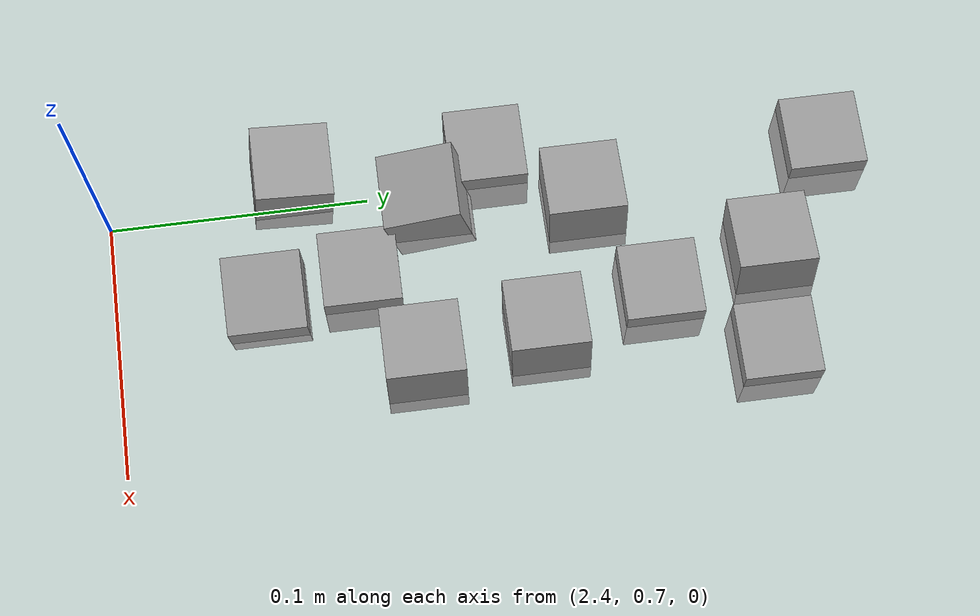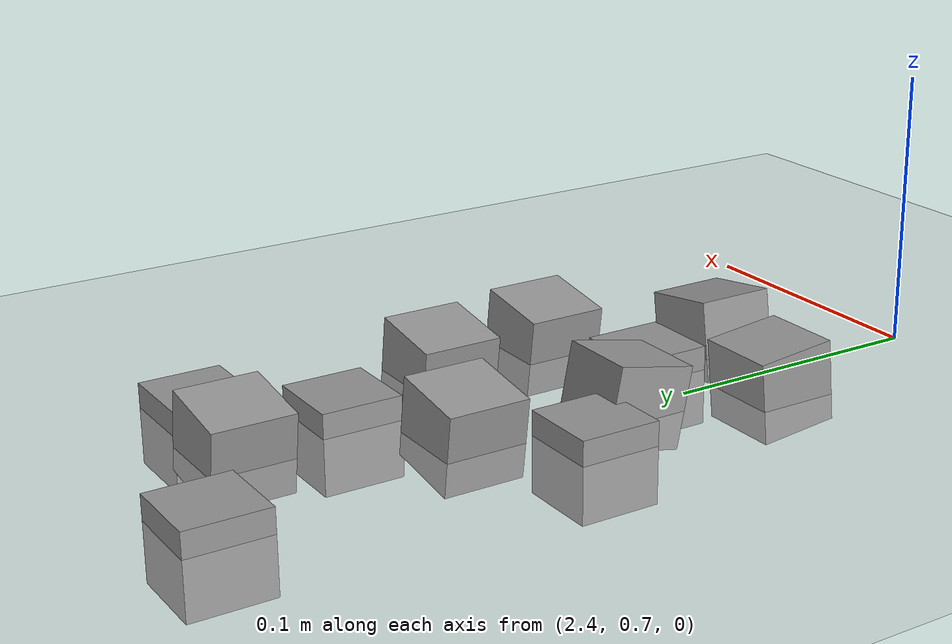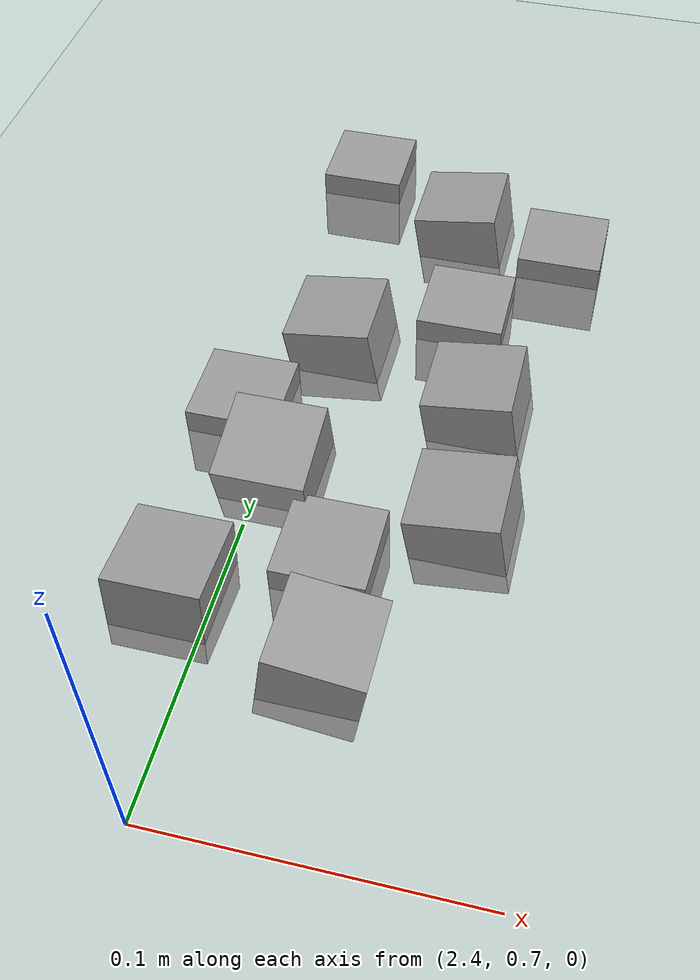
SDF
<sdf version="1.7">
 <world name="default">
  <model name="ground_plane">
   <static>1</static>
   <link name="link">
    <collision name="collision">
     <geometry><plane><normal>0 0 1</normal><size>100 100</size></plane></geometry>
     <surface><friction><ode><mu>100</mu><mu2>50</mu2></ode></friction></surface>
    </collision>
    <visual name="visual">
     <cast_shadows>0</cast_shadows>
     <geometry><plane><normal>0 0 1</normal><size>100 100</size></plane></geometry>
     <material>
      <script><uri>file://media/materials/scripts/gazebo.material</uri><name>Gazebo/Grey</name></script>
     </material>
    </visual>
   </link>
  </model>
  <model name="stone_road_8">
   <link name="link_0_clone_11">
    <inertial>
     <mass>1</mass>
     <inertia>
      <ixx>0.166667</ixx>
      <ixy>0</ixy>
      <ixz>0</ixz>
      <iyy>0.166667</iyy>
      <iyz>0</iyz>
      <izz>0.166667</izz>
     </inertia>
    </inertial>
    <pose>0.007758 0.071496 0.003778 0.2 -0 0</pose>
    <kinematic>1</kinematic>
    <visual name="visual">
     <geometry><box><size>0.03 0.03 0.03</size></box></geometry>
     <material>
      <lighting>1</lighting>
      <script><uri>file://media/materials/scripts/gazebo.material</uri><name>Gazebo/Grey</name></script>
      <shader type="pixel"><normal_map>__default__</normal_map></shader>
      <ambient>0.3 0.3 0.3 1</ambient>
      <diffuse>0.7 0.7 0.7 1</diffuse>
      <specular>0.01 0.01 0.01 1</specular>
      <emissive>0 0 0 1</emissive>
     </material>
    </visual>
    <collision name="collision">
     <geometry><box><size>0.03 0.03 0.03</size></box></geometry>
     <surface>
      <friction>
       <ode><mu>1</mu><mu2>1</mu2><fdir1>0 0 0</fdir1><slip1>0</slip1><slip2>0</slip2></ode>
       <torsional>
        <coefficient>1</coefficient>
        <patch_radius>0</patch_radius>
        <surface_radius>0</surface_radius>
        <use_patch_radius>1</use_patch_radius>
        <ode><slip>0</slip></ode>
       </torsional>
      </friction>
      <bounce><restitution_coefficient>0</restitution_coefficient><threshold>1e+06</threshold></bounce>
      <contact>
       <collide_without_contact>0</collide_without_contact>
       <collide_without_contact_bitmask>1</collide_without_contact_bitmask>
       <collide_bitmask>1</collide_bitmask>
       <ode>
        <soft_cfm>0</soft_cfm>
        <soft_erp>0.2</soft_erp>
        <kp>1e+13</kp>
        <kd>1</kd>
        <max_vel>0.01</max_vel>
        <min_depth>0</min_depth>
       </ode>
       <bullet>
        <split_impulse>1</split_impulse>
        <split_impulse_penetration_threshold>-0.01</split_impulse_penetration_threshold>
        <soft_cfm>0</soft_cfm>
        <soft_erp>0.2</soft_erp>
        <kp>1e+13</kp>
        <kd>1</kd>
       </bullet>
      </contact>
     </surface>
    </collision>
   </link>
   <link name="link_0_clone_2_clone_1">
    <inertial>
     <mass>1</mass>
     <inertia>
      <ixx>0.166667</ixx>
      <ixy>0</ixy>
      <ixz>0</ixz>
      <iyy>0.166667</iyy>
      <iyz>0</iyz>
      <izz>0.166667</izz>
     </inertia>
    </inertial>
    <pose>0.041447 0.006316 0.003778 0 0.15 0</pose>
    <kinematic>1</kinematic>
    <visual name="visual">
     <geometry><box><size>0.03 0.03 0.03</size></box></geometry>
     <material>
      <lighting>1</lighting>
      <script><uri>file://media/materials/scripts/gazebo.material</uri><name>Gazebo/Grey</name></script>
      <shader type="pixel"><normal_map>__default__</normal_map></shader>
      <ambient>0.3 0.3 0.3 1</ambient>
      <diffuse>0.7 0.7 0.7 1</diffuse>
      <specular>0.01 0.01 0.01 1</specular>
      <emissive>0 0 0 1</emissive>
     </material>
    </visual>
    <collision name="collision">
     <geometry><box><size>0.03 0.03 0.03</size></box></geometry>
     <surface>
      <friction>
       <ode><mu>1</mu><mu2>1</mu2><fdir1>0 0 0</fdir1><slip1>0</slip1><slip2>0</slip2></ode>
       <torsional>
        <coefficient>1</coefficient>
        <patch_radius>0</patch_radius>
        <surface_radius>0</surface_radius>
        <use_patch_radius>1</use_patch_radius>
        <ode><slip>0</slip></ode>
       </torsional>
      </friction>
      <bounce><restitution_coefficient>0</restitution_coefficient><threshold>1e+06</threshold></bounce>
      <contact>
       <collide_without_contact>0</collide_without_contact>
       <collide_without_contact_bitmask>1</collide_without_contact_bitmask>
       <collide_bitmask>1</collide_bitmask>
       <ode>
        <soft_cfm>0</soft_cfm>
        <soft_erp>0.2</soft_erp>
        <kp>1e+13</kp>
        <kd>1</kd>
        <max_vel>0.01</max_vel>
        <min_depth>0</min_depth>
       </ode>
       <bullet>
        <split_impulse>1</split_impulse>
        <split_impulse_penetration_threshold>-0.01</split_impulse_penetration_threshold>
        <soft_cfm>0</soft_cfm>
        <soft_erp>0.2</soft_erp>
        <kp>1e+13</kp>
        <kd>1</kd>
       </bullet>
      </contact>
     </surface>
    </collision>
   </link>
   <link name="link_0_clone_2_clone_2">
    <inertial>
     <mass>1</mass>
     <inertia>
      <ixx>0.166667</ixx>
      <ixy>0</ixy>
      <ixz>0</ixz>
      <iyy>0.166667</iyy>
      <iyz>0</iyz>
      <izz>0.166667</izz>
     </inertia>
    </inertial>
    <pose>0.066563 0.110568 0.003778 0 -0.15 0</pose>
    <kinematic>1</kinematic>
    <visual name="visual">
     <geometry><box><size>0.03 0.03 0.03</size></box></geometry>
     <material>
      <lighting>1</lighting>
      <script><uri>file://media/materials/scripts/gazebo.material</uri><name>Gazebo/Grey</name></script>
      <shader type="pixel"><normal_map>__default__</normal_map></shader>
      <ambient>0.3 0.3 0.3 1</ambient>
      <diffuse>0.7 0.7 0.7 1</diffuse>
      <specular>0.01 0.01 0.01 1</specular>
      <emissive>0 0 0 1</emissive>
     </material>
    </visual>
    <collision name="collision">
     <geometry><box><size>0.03 0.03 0.03</size></box></geometry>
     <surface>
      <friction>
       <ode><mu>1</mu><mu2>1</mu2><fdir1>0 0 0</fdir1><slip1>0</slip1><slip2>0</slip2></ode>
       <torsional>
        <coefficient>1</coefficient>
        <patch_radius>0</patch_radius>
        <surface_radius>0</surface_radius>
        <use_patch_radius>1</use_patch_radius>
        <ode><slip>0</slip></ode>
       </torsional>
      </friction>
      <bounce><restitution_coefficient>0</restitution_coefficient><threshold>1e+06</threshold></bounce>
      <contact>
       <collide_without_contact>0</collide_without_contact>
       <collide_without_contact_bitmask>1</collide_without_contact_bitmask>
       <collide_bitmask>1</collide_bitmask>
       <ode>
        <soft_cfm>0</soft_cfm>
        <soft_erp>0.2</soft_erp>
        <kp>1e+13</kp>
        <kd>1</kd>
        <max_vel>0.01</max_vel>
        <min_depth>0</min_depth>
       </ode>
       <bullet>
        <split_impulse>1</split_impulse>
        <split_impulse_penetration_threshold>-0.01</split_impulse_penetration_threshold>
        <soft_cfm>0</soft_cfm>
        <soft_erp>0.2</soft_erp>
        <kp>1e+13</kp>
        <kd>1</kd>
       </bullet>
      </contact>
     </surface>
    </collision>
   </link>
   <link name="link_0_clone_2_clone_2_clone_12">
    <inertial>
     <mass>1</mass>
     <inertia>
      <ixx>0.166667</ixx>
      <ixy>0</ixy>
      <ixz>0</ixz>
      <iyy>0.166667</iyy>
      <iyz>0</iyz>
      <izz>0.166667</izz>
     </inertia>
    </inertial>
    <pose>0.044693 0.200081 0.003778 0 -0.15 0</pose>
    <kinematic>1</kinematic>
    <visual name="visual">
     <geometry><box><size>0.03 0.03 0.03</size></box></geometry>
     <material>
      <lighting>1</lighting>
      <script><uri>file://media/materials/scripts/gazebo.material</uri><name>Gazebo/Grey</name></script>
      <shader type="pixel"><normal_map>__default__</normal_map></shader>
      <ambient>0.3 0.3 0.3 1</ambient>
      <diffuse>0.7 0.7 0.7 1</diffuse>
      <specular>0.01 0.01 0.01 1</specular>
      <emissive>0 0 0 1</emissive>
     </material>
    </visual>
    <collision name="collision">
     <geometry><box><size>0.03 0.03 0.03</size></box></geometry>
     <surface>
      <friction>
       <ode><mu>1</mu><mu2>1</mu2><fdir1>0 0 0</fdir1><slip1>0</slip1><slip2>0</slip2></ode>
       <torsional>
        <coefficient>1</coefficient>
        <patch_radius>0</patch_radius>
        <surface_radius>0</surface_radius>
        <use_patch_radius>1</use_patch_radius>
        <ode><slip>0</slip></ode>
       </torsional>
      </friction>
      <bounce><restitution_coefficient>0</restitution_coefficient><threshold>1e+06</threshold></bounce>
      <contact>
       <collide_without_contact>0</collide_without_contact>
       <collide_without_contact_bitmask>1</collide_without_contact_bitmask>
       <collide_bitmask>1</collide_bitmask>
       <ode>
        <soft_cfm>0</soft_cfm>
        <soft_erp>0.2</soft_erp>
        <kp>1e+13</kp>
        <kd>1</kd>
        <max_vel>0.01</max_vel>
        <min_depth>0</min_depth>
       </ode>
       <bullet>
        <split_impulse>1</split_impulse>
        <split_impulse_penetration_threshold>-0.01</split_impulse_penetration_threshold>
        <soft_cfm>0</soft_cfm>
        <soft_erp>0.2</soft_erp>
        <kp>1e+13</kp>
        <kd>1</kd>
       </bullet>
      </contact>
     </surface>
    </collision>
   </link>
   <link name="link_0_clone_2_clone_2_clone_13">
    <inertial>
     <mass>1</mass>
     <inertia>
      <ixx>0.166667</ixx>
      <ixy>0</ixy>
      <ixz>0</ixz>
      <iyy>0.166667</iyy>
      <iyz>0</iyz>
      <izz>0.166667</izz>
     </inertia>
    </inertial>
    <pose>0.014407 0.13189 0.003778 0 -0.15 0</pose>
    <kinematic>1</kinematic>
    <visual name="visual">
     <geometry><box><size>0.03 0.03 0.03</size></box></geometry>
     <material>
      <lighting>1</lighting>
      <script><uri>file://media/materials/scripts/gazebo.material</uri><name>Gazebo/Grey</name></script>
      <shader type="pixel"><normal_map>__default__</normal_map></shader>
      <ambient>0.3 0.3 0.3 1</ambient>
      <diffuse>0.7 0.7 0.7 1</diffuse>
      <specular>0.01 0.01 0.01 1</specular>
      <emissive>0 0 0 1</emissive>
     </material>
    </visual>
    <collision name="collision">
     <geometry><box><size>0.03 0.03 0.03</size></box></geometry>
     <surface>
      <friction>
       <ode><mu>1</mu><mu2>1</mu2><fdir1>0 0 0</fdir1><slip1>0</slip1><slip2>0</slip2></ode>
       <torsional>
        <coefficient>1</coefficient>
        <patch_radius>0</patch_radius>
        <surface_radius>0</surface_radius>
        <use_patch_radius>1</use_patch_radius>
        <ode><slip>0</slip></ode>
       </torsional>
      </friction>
      <bounce><restitution_coefficient>0</restitution_coefficient><threshold>1e+06</threshold></bounce>
      <contact>
       <collide_without_contact>0</collide_without_contact>
       <collide_without_contact_bitmask>1</collide_without_contact_bitmask>
       <collide_bitmask>1</collide_bitmask>
       <ode>
        <soft_cfm>0</soft_cfm>
        <soft_erp>0.2</soft_erp>
        <kp>1e+13</kp>
        <kd>1</kd>
        <max_vel>0.01</max_vel>
        <min_depth>0</min_depth>
       </ode>
       <bullet>
        <split_impulse>1</split_impulse>
        <split_impulse_penetration_threshold>-0.01</split_impulse_penetration_threshold>
        <soft_cfm>0</soft_cfm>
        <soft_erp>0.2</soft_erp>
        <kp>1e+13</kp>
        <kd>1</kd>
       </bullet>
      </contact>
     </surface>
    </collision>
   </link>
   <link name="link_0_clone_2_clone_2_clone_13_clone_clone_16_clone">
    <inertial>
     <mass>1</mass>
     <inertia>
      <ixx>0.166667</ixx>
      <ixy>0</ixy>
      <ixz>0</ixz>
      <iyy>0.166667</iyy>
      <iyz>0</iyz>
      <izz>0.166667</izz>
     </inertia>
    </inertial>
    <pose>0.0535 0.156403 -0.006222 0 -0 0</pose>
    <kinematic>1</kinematic>
    <visual name="visual">
     <geometry><box><size>0.03 0.03 0.03</size></box></geometry>
     <material>
      <lighting>1</lighting>
      <script><uri>file://media/materials/scripts/gazebo.material</uri><name>Gazebo/Grey</name></script>
      <shader type="pixel"><normal_map>__default__</normal_map></shader>
      <ambient>0.3 0.3 0.3 1</ambient>
      <diffuse>0.7 0.7 0.7 1</diffuse>
      <specular>0.01 0.01 0.01 1</specular>
      <emissive>0 0 0 1</emissive>
     </material>
    </visual>
    <collision name="collision">
     <geometry><box><size>0.03 0.03 0.03</size></box></geometry>
     <surface>
      <friction>
       <ode><mu>1</mu><mu2>1</mu2><fdir1>0 0 0</fdir1><slip1>0</slip1><slip2>0</slip2></ode>
       <torsional>
        <coefficient>1</coefficient>
        <patch_radius>0</patch_radius>
        <surface_radius>0</surface_radius>
        <use_patch_radius>1</use_patch_radius>
        <ode><slip>0</slip></ode>
       </torsional>
      </friction>
      <bounce><restitution_coefficient>0</restitution_coefficient><threshold>1e+06</threshold></bounce>
      <contact>
       <collide_without_contact>0</collide_without_contact>
       <collide_without_contact_bitmask>1</collide_without_contact_bitmask>
       <collide_bitmask>1</collide_bitmask>
       <ode>
        <soft_cfm>0</soft_cfm>
        <soft_erp>0.2</soft_erp>
        <kp>1e+13</kp>
        <kd>1</kd>
        <max_vel>0.01</max_vel>
        <min_depth>0</min_depth>
       </ode>
       <bullet>
        <split_impulse>1</split_impulse>
        <split_impulse_penetration_threshold>-0.01</split_impulse_penetration_threshold>
        <soft_cfm>0</soft_cfm>
        <soft_erp>0.2</soft_erp>
        <kp>1e+13</kp>
        <kd>1</kd>
       </bullet>
      </contact>
     </surface>
    </collision>
   </link>
   <link name="link_0_clone_2_clone_2_clone_13_clone_clone_16_clone_0">
    <inertial>
     <mass>1</mass>
     <inertia>
      <ixx>0.166667</ixx>
      <ixy>0</ixy>
      <ixz>0</ixz>
      <iyy>0.166667</iyy>
      <iyz>0</iyz>
      <izz>0.166667</izz>
     </inertia>
    </inertial>
    <pose>-0.010782 0.09679 -0.006222 0 -0 0</pose>
    <kinematic>1</kinematic>
    <visual name="visual">
     <geometry><box><size>0.03 0.03 0.03</size></box></geometry>
     <material>
      <lighting>1</lighting>
      <script><uri>file://media/materials/scripts/gazebo.material</uri><name>Gazebo/Grey</name></script>
      <shader type="pixel"><normal_map>__default__</normal_map></shader>
      <ambient>0.3 0.3 0.3 1</ambient>
      <diffuse>0.7 0.7 0.7 1</diffuse>
      <specular>0.01 0.01 0.01 1</specular>
      <emissive>0 0 0 1</emissive>
     </material>
    </visual>
    <collision name="collision">
     <geometry><box><size>0.03 0.03 0.03</size></box></geometry>
     <surface>
      <friction>
       <ode><mu>1</mu><mu2>1</mu2><fdir1>0 0 0</fdir1><slip1>0</slip1><slip2>0</slip2></ode>
       <torsional>
        <coefficient>1</coefficient>
        <patch_radius>0</patch_radius>
        <surface_radius>0</surface_radius>
        <use_patch_radius>1</use_patch_radius>
        <ode><slip>0</slip></ode>
       </torsional>
      </friction>
      <bounce><restitution_coefficient>0</restitution_coefficient><threshold>1e+06</threshold></bounce>
      <contact>
       <collide_without_contact>0</collide_without_contact>
       <collide_without_contact_bitmask>1</collide_without_contact_bitmask>
       <collide_bitmask>1</collide_bitmask>
       <ode>
        <soft_cfm>0</soft_cfm>
        <soft_erp>0.2</soft_erp>
        <kp>1e+13</kp>
        <kd>1</kd>
        <max_vel>0.01</max_vel>
        <min_depth>0</min_depth>
       </ode>
       <bullet>
        <split_impulse>1</split_impulse>
        <split_impulse_penetration_threshold>-0.01</split_impulse_penetration_threshold>
        <soft_cfm>0</soft_cfm>
        <soft_erp>0.2</soft_erp>
        <kp>1e+13</kp>
        <kd>1</kd>
       </bullet>
      </contact>
     </surface>
    </collision>
   </link>
   <link name="link_0_clone_2_clone_2_clone_13_clone_clone_16_clone_1">
    <inertial>
     <mass>1</mass>
     <inertia>
      <ixx>0.166667</ixx>
      <ixy>0</ixy>
      <ixz>0</ixz>
      <iyy>0.166667</iyy>
      <iyz>0</iyz>
      <izz>0.166667</izz>
     </inertia>
    </inertial>
    <pose>0.033787 0.042837 -0.006222 0 -0 0</pose>
    <kinematic>1</kinematic>
    <visual name="visual">
     <geometry><box><size>0.03 0.03 0.03</size></box></geometry>
     <material>
      <lighting>1</lighting>
      <script><uri>file://media/materials/scripts/gazebo.material</uri><name>Gazebo/Grey</name></script>
      <shader type="pixel"><normal_map>__default__</normal_map></shader>
      <ambient>0.3 0.3 0.3 1</ambient>
      <diffuse>0.7 0.7 0.7 1</diffuse>
      <specular>0.01 0.01 0.01 1</specular>
      <emissive>0 0 0 1</emissive>
     </material>
    </visual>
    <collision name="collision">
     <geometry><box><size>0.03 0.03 0.03</size></box></geometry>
     <surface>
      <friction>
       <ode><mu>1</mu><mu2>1</mu2><fdir1>0 0 0</fdir1><slip1>0</slip1><slip2>0</slip2></ode>
       <torsional>
        <coefficient>1</coefficient>
        <patch_radius>0</patch_radius>
        <surface_radius>0</surface_radius>
        <use_patch_radius>1</use_patch_radius>
        <ode><slip>0</slip></ode>
       </torsional>
      </friction>
      <bounce><restitution_coefficient>0</restitution_coefficient><threshold>1e+06</threshold></bounce>
      <contact>
       <collide_without_contact>0</collide_without_contact>
       <collide_without_contact_bitmask>1</collide_without_contact_bitmask>
       <collide_bitmask>1</collide_bitmask>
       <ode>
        <soft_cfm>0</soft_cfm>
        <soft_erp>0.2</soft_erp>
        <kp>1e+13</kp>
        <kd>1</kd>
        <max_vel>0.01</max_vel>
        <min_depth>0</min_depth>
       </ode>
       <bullet>
        <split_impulse>1</split_impulse>
        <split_impulse_penetration_threshold>-0.01</split_impulse_penetration_threshold>
        <soft_cfm>0</soft_cfm>
        <soft_erp>0.2</soft_erp>
        <kp>1e+13</kp>
        <kd>1</kd>
       </bullet>
      </contact>
     </surface>
    </collision>
   </link>
   <link name="link_0_clone_2_clone_2_clone_13_clone_clone_16_clone_23">
    <inertial>
     <mass>1</mass>
     <inertia>
      <ixx>0.166667</ixx>
      <ixy>0</ixy>
      <ixz>0</ixz>
      <iyy>0.166667</iyy>
      <iyz>0</iyz>
      <izz>0.166667</izz>
     </inertia>
    </inertial>
    <pose>0.000385 0.228664 -0.006222 0 -0 0</pose>
    <kinematic>1</kinematic>
    <visual name="visual">
     <geometry><box><size>0.03 0.03 0.03</size></box></geometry>
     <material>
      <lighting>1</lighting>
      <script><uri>file://media/materials/scripts/gazebo.material</uri><name>Gazebo/Grey</name></script>
      <shader type="pixel"><normal_map>__default__</normal_map></shader>
      <ambient>0.3 0.3 0.3 1</ambient>
      <diffuse>0.7 0.7 0.7 1</diffuse>
      <specular>0.01 0.01 0.01 1</specular>
      <emissive>0 0 0 1</emissive>
     </material>
    </visual>
    <collision name="collision">
     <geometry><box><size>0.03 0.03 0.03</size></box></geometry>
     <surface>
      <friction>
       <ode><mu>1</mu><mu2>1</mu2><fdir1>0 0 0</fdir1><slip1>0</slip1><slip2>0</slip2></ode>
       <torsional>
        <coefficient>1</coefficient>
        <patch_radius>0</patch_radius>
        <surface_radius>0</surface_radius>
        <use_patch_radius>1</use_patch_radius>
        <ode><slip>0</slip></ode>
       </torsional>
      </friction>
      <bounce><restitution_coefficient>0</restitution_coefficient><threshold>1e+06</threshold></bounce>
      <contact>
       <collide_without_contact>0</collide_without_contact>
       <collide_without_contact_bitmask>1</collide_without_contact_bitmask>
       <collide_bitmask>1</collide_bitmask>
       <ode>
        <soft_cfm>0</soft_cfm>
        <soft_erp>0.2</soft_erp>
        <kp>1e+13</kp>
        <kd>1</kd>
        <max_vel>0.01</max_vel>
        <min_depth>0</min_depth>
       </ode>
       <bullet>
        <split_impulse>1</split_impulse>
        <split_impulse_penetration_threshold>-0.01</split_impulse_penetration_threshold>
        <soft_cfm>0</soft_cfm>
        <soft_erp>0.2</soft_erp>
        <kp>1e+13</kp>
        <kd>1</kd>
       </bullet>
      </contact>
     </surface>
    </collision>
   </link>
   <link name="link_0_clone_2_clone_2_clone_13_clone_clone_16_clone_24">
    <inertial>
     <mass>1</mass>
     <inertia>
      <ixx>0.166667</ixx>
      <ixy>0</ixy>
      <ixz>0</ixz>
      <iyy>0.166667</iyy>
      <iyz>0</iyz>
      <izz>0.166667</izz>
     </inertia>
    </inertial>
    <pose>0.08246 0.196776 -0.006222 0 -0 0</pose>
    <kinematic>1</kinematic>
    <visual name="visual">
     <geometry><box><size>0.03 0.03 0.03</size></box></geometry>
     <material>
      <lighting>1</lighting>
      <script><uri>file://media/materials/scripts/gazebo.material</uri><name>Gazebo/Grey</name></script>
      <shader type="pixel"><normal_map>__default__</normal_map></shader>
      <ambient>0.3 0.3 0.3 1</ambient>
      <diffuse>0.7 0.7 0.7 1</diffuse>
      <specular>0.01 0.01 0.01 1</specular>
      <emissive>0 0 0 1</emissive>
     </material>
    </visual>
    <collision name="collision">
     <geometry><box><size>0.03 0.03 0.03</size></box></geometry>
     <surface>
      <friction>
       <ode><mu>1</mu><mu2>1</mu2><fdir1>0 0 0</fdir1><slip1>0</slip1><slip2>0</slip2></ode>
       <torsional>
        <coefficient>1</coefficient>
        <patch_radius>0</patch_radius>
        <surface_radius>0</surface_radius>
        <use_patch_radius>1</use_patch_radius>
        <ode><slip>0</slip></ode>
       </torsional>
      </friction>
      <bounce><restitution_coefficient>0</restitution_coefficient><threshold>1e+06</threshold></bounce>
      <contact>
       <collide_without_contact>0</collide_without_contact>
       <collide_without_contact_bitmask>1</collide_without_contact_bitmask>
       <collide_bitmask>1</collide_bitmask>
       <ode>
        <soft_cfm>0</soft_cfm>
        <soft_erp>0.2</soft_erp>
        <kp>1e+13</kp>
        <kd>1</kd>
        <max_vel>0.01</max_vel>
        <min_depth>0</min_depth>
       </ode>
       <bullet>
        <split_impulse>1</split_impulse>
        <split_impulse_penetration_threshold>-0.01</split_impulse_penetration_threshold>
        <soft_cfm>0</soft_cfm>
        <soft_erp>0.2</soft_erp>
        <kp>1e+13</kp>
        <kd>1</kd>
       </bullet>
      </contact>
     </surface>
    </collision>
   </link>
   <link name="link_0_clone_2_clone_2_clone_13_clone_clone_3">
    <inertial>
     <mass>1</mass>
     <inertia>
      <ixx>0.166667</ixx>
      <ixy>0</ixy>
      <ixz>0</ixz>
      <iyy>0.166667</iyy>
      <iyz>0</iyz>
      <izz>0.166667</izz>
     </inertia>
    </inertial>
    <pose>-0.008408 0.020239 0.003778 -0.1 0 0</pose>
    <kinematic>1</kinematic>
    <visual name="visual">
     <geometry><box><size>0.03 0.03 0.03</size></box></geometry>
     <material>
      <lighting>1</lighting>
      <script><uri>file://media/materials/scripts/gazebo.material</uri><name>Gazebo/Grey</name></script>
      <shader type="pixel"><normal_map>__default__</normal_map></shader>
      <ambient>0.3 0.3 0.3 1</ambient>
      <diffuse>0.7 0.7 0.7 1</diffuse>
      <specular>0.01 0.01 0.01 1</specular>
      <emissive>0 0 0 1</emissive>
     </material>
    </visual>
    <collision name="collision">
     <geometry><box><size>0.03 0.03 0.03</size></box></geometry>
     <surface>
      <friction>
       <ode><mu>1</mu><mu2>1</mu2><fdir1>0 0 0</fdir1><slip1>0</slip1><slip2>0</slip2></ode>
       <torsional>
        <coefficient>1</coefficient>
        <patch_radius>0</patch_radius>
        <surface_radius>0</surface_radius>
        <use_patch_radius>1</use_patch_radius>
        <ode><slip>0</slip></ode>
       </torsional>
      </friction>
      <bounce><restitution_coefficient>0</restitution_coefficient><threshold>1e+06</threshold></bounce>
      <contact>
       <collide_without_contact>0</collide_without_contact>
       <collide_without_contact_bitmask>1</collide_without_contact_bitmask>
       <collide_bitmask>1</collide_bitmask>
       <ode>
        <soft_cfm>0</soft_cfm>
        <soft_erp>0.2</soft_erp>
        <kp>1e+13</kp>
        <kd>1</kd>
        <max_vel>0.01</max_vel>
        <min_depth>0</min_depth>
       </ode>
       <bullet>
        <split_impulse>1</split_impulse>
        <split_impulse_penetration_threshold>-0.01</split_impulse_penetration_threshold>
        <soft_cfm>0</soft_cfm>
        <soft_erp>0.2</soft_erp>
        <kp>1e+13</kp>
        <kd>1</kd>
       </bullet>
      </contact>
     </surface>
    </collision>
   </link>
   <link name="link_0_clone_2_clone_2_clone_9">
    <inertial>
     <mass>1</mass>
     <inertia>
      <ixx>0.166667</ixx>
      <ixy>0</ixy>
      <ixz>0</ixz>
      <iyy>0.166667</iyy>
      <iyz>0</iyz>
      <izz>0.166667</izz>
     </inertia>
    </inertial>
    <pose>0.071478 0.063212 0.003778 0 -0.15 0</pose>
    <kinematic>1</kinematic>
    <visual name="visual">
     <geometry><box><size>0.03 0.03 0.03</size></box></geometry>
     <material>
      <lighting>1</lighting>
      <script><uri>file://media/materials/scripts/gazebo.material</uri><name>Gazebo/Grey</name></script>
      <shader type="pixel"><normal_map>__default__</normal_map></shader>
      <ambient>0.3 0.3 0.3 1</ambient>
      <diffuse>0.7 0.7 0.7 1</diffuse>
      <specular>0.01 0.01 0.01 1</specular>
      <emissive>0 0 0 1</emissive>
     </material>
    </visual>
    <collision name="collision">
     <geometry><box><size>0.03 0.03 0.03</size></box></geometry>
     <surface>
      <friction>
       <ode><mu>1</mu><mu2>1</mu2><fdir1>0 0 0</fdir1><slip1>0</slip1><slip2>0</slip2></ode>
       <torsional>
        <coefficient>1</coefficient>
        <patch_radius>0</patch_radius>
        <surface_radius>0</surface_radius>
        <use_patch_radius>1</use_patch_radius>
        <ode><slip>0</slip></ode>
       </torsional>
      </friction>
      <bounce><restitution_coefficient>0</restitution_coefficient><threshold>1e+06</threshold></bounce>
      <contact>
       <collide_without_contact>0</collide_without_contact>
       <collide_without_contact_bitmask>1</collide_without_contact_bitmask>
       <collide_bitmask>1</collide_bitmask>
       <ode>
        <soft_cfm>0</soft_cfm>
        <soft_erp>0.2</soft_erp>
        <kp>1e+13</kp>
        <kd>1</kd>
        <max_vel>0.01</max_vel>
        <min_depth>0</min_depth>
       </ode>
       <bullet>
        <split_impulse>1</split_impulse>
        <split_impulse_penetration_threshold>-0.01</split_impulse_penetration_threshold>
        <soft_cfm>0</soft_cfm>
        <soft_erp>0.2</soft_erp>
        <kp>1e+13</kp>
        <kd>1</kd>
       </bullet>
      </contact>
     </surface>
    </collision>
   </link>
   <static>0</static>
   <pose>2.39572 0.751546 -0 0 -0 0</pose>
  </model>
 </world>
</sdf>
